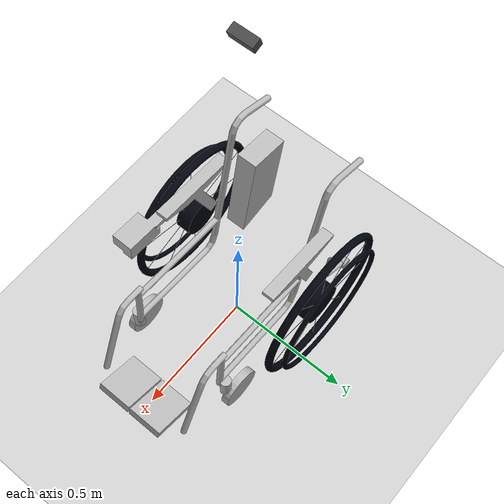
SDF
<?xml version="1.0"?>
<sdf version="1.6">
  <world name="default">

    <include>
      <uri>model://ground_plane</uri>
    </include>

    <include>
      <uri>model://sun</uri>
    </include>

    <scene>
      <shadows>false</shadows>
    </scene>

    <gui fullscreen='0'>
      <camera name='user_camera'>
        <pose frame=''>0.319654 -0.235002 9.29441 0 1.5138 0.009599</pose>
        <view_controller>orbit</view_controller>
        <projection_type>perspective</projection_type>
      </camera>
    </gui>

    <physics type="ode">
      <real_time_update_rate>1000.0</real_time_update_rate>
      <max_step_size>0.001</max_step_size>
      <real_time_factor>1</real_time_factor>
      <ode>
        <solver>
          <type>quick</type>
          <iters>150</iters>
          <precon_iters>0</precon_iters>
          <sor>1.400000</sor>
          <use_dynamic_moi_rescaling>1</use_dynamic_moi_rescaling>
        </solver>
        <constraints>
          <cfm>0.00001</cfm>
          <erp>0.2</erp>
          <contact_max_correcting_vel>2000.000000</contact_max_correcting_vel>
          <contact_surface_layer>0.01000</contact_surface_layer>
        </constraints>
      </ode>
    </physics>

    <include>
      <uri>model://momo</uri>
    </include>

  </world>
</sdf>

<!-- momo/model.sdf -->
<sdf version='1.5'>
  <model name="momo">
    <pose>0.0 0.0 0.404 0.0 0.0 0.0</pose>

    <link name="base_footprint"/>

    <link name="base_link">

      <inertial>
        <pose>0 0 0.1 0 0 0</pose>
        <inertia>
          <ixx>2.665</ixx>
          <iyy>4.562562499999999</iyy>
          <izz>3.3555625</izz>
        </inertia>
        <mass>30.0</mass>
      </inertial>

      <collision name="base_collision">
        <pose>0 0 0.1 0 0 0</pose>
        <geometry>
          <box>
            <size>1.029 0.542 0.815</size>
          </box>
        </geometry>
      </collision>

      <visual name="base_visual">
        <pose>0 0 -0.4075 0 0 0</pose>
        <geometry>
          <mesh>
            <uri>model://momo/meshes/momo_base.dae</uri>
            <scale>0.001 0.001 0.001</scale>
          </mesh>
        </geometry>
      </visual>
    </link>

    <link name="wheel_left_link">
      <!-- TODO: あとでinertialを算出してセットすること。 -->
      <inertial>
        <pose>-0.1 0.3076 -0.1 -1.57 0 0</pose>
        <inertia>
          <ixx>1.8158194e-03</ixx>
          <ixy>-9.3392e-12</ixy>
          <ixz>1.04909e-11</ixz>
          <iyy>3.2922126e-03</iyy>
          <iyz>5.75694e-11</iyz>
          <izz>1.8158194e-03</izz>
        </inertia>
        <mass>1.0</mass>
      </inertial>

      <collision name="wheel_left_collision">
        <pose>-0.1 0.3076 -0.1 -1.57 0 0</pose>
        <geometry>
          <cylinder>
            <radius>0.305</radius>
            <length>0.030</length>
          </cylinder>
        </geometry>
        <surface>
          <!-- This friction pamareter don't contain reliable data!! -->
          <friction>
            <ode>
              <mu>100000.0</mu>
              <mu2>100000.0</mu2>
              <fdir1>0 0 0</fdir1>
              <slip1>0.0</slip1>
              <slip2>0.0</slip2>
            </ode>
          </friction>
        </surface>
      </collision>
      <visual name="wheel_left_visual">
        <pose>-0.1 0.3076 -0.1 0 0 3.14</pose>
        <geometry>
          <mesh>
            <uri>model://momo/meshes/tire.dae</uri>
            <scale>0.001 0.001 0.001</scale>
          </mesh>
        </geometry>
      </visual>
    </link>

    <link name="wheel_right_link">
      <!-- TODO: あとでinertialを算出してセットすること。 -->
      <inertial>
        <pose>-0.1 -0.3076 -0.1 -1.57 0 0</pose>
        <inertia>
          <ixx>1.8158194e-03</ixx>
          <ixy>-9.3392e-12</ixy>
          <ixz>1.04909e-11</ixz>
          <iyy>3.2922126e-03</iyy>
          <iyz>5.75694e-11</iyz>
          <izz>1.8158194e-03</izz>
        </inertia>
        <mass>1.0</mass>
      </inertial>

      <collision name="wheel_right_collision">
        <pose>-0.1 -0.3076 -0.1 -1.57 0 0</pose>
        <geometry>
          <cylinder>
            <radius>0.305</radius>
            <length>0.030</length>
          </cylinder>
        </geometry>

        <surface>

          <friction>
            <ode>
              <mu>100000.0</mu>
              <mu2>100000.0</mu2>
              <fdir1>0 0 0</fdir1>
              <slip1>0.0</slip1>
              <slip2>0.0</slip2>
            </ode>
          </friction>
        </surface>

      </collision>

      <visual name="wheel_right_visual">
        <pose>-0.1 -0.3076 -0.1 0 0 0</pose>
        <geometry>
          <mesh>
            <uri>model://momo/meshes/tire.dae</uri>
            <scale>0.001 0.001 0.001</scale>
          </mesh>
        </geometry>
      </visual>
    </link>

    <link name="caster_left_link">
      <!-- TODO: あとでinertialを算出してセットすること。 -->
      <inertial>
        <pose>0.32 0.21 -0.23 0 0 0</pose>
        <inertia>
          <ixx>1.8158194e-03</ixx>
          <ixy>-9.3392e-12</ixy>
          <ixz>1.04909e-11</ixz>
          <iyy>3.2922126e-03</iyy>
          <iyz>5.75694e-11</iyz>
          <izz>1.8158194e-03</izz>
        </inertia>
        <mass>2.8498940e-02</mass>
      </inertial>

      <collision name="caster_left_collision">
        <pose>0.32 0.21 -0.23 0 0 0</pose>
        <geometry>
          <cylinder>
            <radius>0.021</radius>
            <length>0.100</length>
          </cylinder>
        </geometry>

        <surface>

          <friction>
            <ode>
              <mu>100000.0</mu>
              <mu2>100000.0</mu2>
              <fdir1>0 0 0</fdir1>
              <slip1>0.0</slip1>
              <slip2>0.0</slip2>
            </ode>
          </friction>
        </surface>

      </collision>

      <visual name="caster_left_visual">
        <pose>0.32 0.21 -0.23 0 0 0</pose>
        <geometry>
          <cylinder>
            <radius>0.021</radius>
            <length>0.100</length>
          </cylinder>
        </geometry>
      </visual>
    </link>

    <link name="caster_wheel_left_link">
      <!-- TODO: あとでinertialを算出してセットすること。 -->
      <inertial>
        <pose>0.27 0.23 -0.32 -1.57 0 0</pose>
        <inertia>
          <ixx>1.8158194e-03</ixx>
          <ixy>-9.3392e-12</ixy>
          <ixz>1.04909e-11</ixz>
          <iyy>3.2922126e-03</iyy>
          <iyz>5.75694e-11</iyz>
          <izz>1.8158194e-03</izz>
        </inertia>
        <mass>2.8498940e-02</mass>
      </inertial>

      <collision name="caster_wheel_left_collision">
        <pose>0.27 0.23 -0.32 -1.57 0 0</pose>
        <geometry>
          <cylinder>
            <radius>0.080</radius>
            <length>0.030</length>
          </cylinder>
        </geometry>

        <surface>

          <friction>
            <ode>
              <mu>100000.0</mu>
              <mu2>100000.0</mu2>
              <fdir1>0 0 0</fdir1>
              <slip1>0.0</slip1>
              <slip2>0.0</slip2>
            </ode>
          </friction>
        </surface>

      </collision>

      <visual name="caster_wheel_left_visual">
        <pose>0.27 0.23 -0.32 -1.57 0 0</pose>
        <geometry>
          <cylinder>
            <radius>0.080</radius>
            <length>0.030</length>
          </cylinder>
        </geometry>
      </visual>
    </link>

    <link name="caster_right_link">
      <!-- TODO: あとでinertialを算出してセットすること。 -->
      <inertial>
        <pose>0.32 -0.21 -0.23 0 0 0</pose>
        <inertia>
          <ixx>1.8158194e-03</ixx>
          <ixy>-9.3392e-12</ixy>
          <ixz>1.04909e-11</ixz>
          <iyy>3.2922126e-03</iyy>
          <iyz>5.75694e-11</iyz>
          <izz>1.8158194e-03</izz>
        </inertia>
        <mass>2.8498940e-02</mass>
      </inertial>

      <collision name="caster_right_collision">
        <pose>0.32 -0.21 -0.23 0 0 0</pose>
        <geometry>
          <cylinder>
            <radius>0.021</radius>
            <length>0.100</length>
          </cylinder>
        </geometry>

        <surface>

          <friction>
            <ode>
              <mu>100000.0</mu>
              <mu2>100000.0</mu2>
              <fdir1>0 0 0</fdir1>
              <slip1>0.0</slip1>
              <slip2>0.0</slip2>
            </ode>
          </friction>
        </surface>

      </collision>

      <visual name="caster_right_visual">
        <pose>0.32 -0.21 -0.23 0 0 0</pose>
        <geometry>
          <cylinder>
            <radius>0.021</radius>
            <length>0.100</length>
          </cylinder>
        </geometry>
      </visual>
    </link>

    <link name="caster_wheel_right_link">
      <!-- TODO: あとでinertialを算出してセットすること。 -->
      <inertial>
        <pose>0.27 -0.23 -0.32 -1.57 0 0</pose>
        <inertia>
          <ixx>1.8158194e-03</ixx>
          <ixy>-9.3392e-12</ixy>
          <ixz>1.04909e-11</ixz>
          <iyy>3.2922126e-03</iyy>
          <iyz>5.75694e-11</iyz>
          <izz>1.8158194e-03</izz>
        </inertia>
        <mass>2.8498940e-02</mass>
      </inertial>

      <collision name="caster_wheel_right_collision">
        <pose>0.27 -0.23 -0.32 -1.57 0 0</pose>
        <geometry>
          <cylinder>
            <radius>0.080</radius>
            <length>0.030</length>
          </cylinder>
        </geometry>

        <surface>

          <friction>
            <ode>
              <mu>100000.0</mu>
              <mu2>100000.0</mu2>
              <fdir1>0 0 0</fdir1>
              <slip1>0.0</slip1>
              <slip2>0.0</slip2>
            </ode>
          </friction>
        </surface>

      </collision>

      <visual name="caster_wheel_right_visual">
        <pose>0.27 -0.23 -0.32 -1.57 0 0</pose>
        <geometry>
          <cylinder>
            <radius>0.080</radius>
            <length>0.030</length>
          </cylinder>
        </geometry>
      </visual>
    </link>

    <joint name="base_joint" type="fixed">
      <parent>base_footprint</parent>
      <child>base_link</child>
      <pose>0.0 0.0 0.010 0 0 0</pose>
    </joint>

    <joint name="wheel_left_joint" type="revolute">
      <parent>base_link</parent>
      <child>wheel_left_link</child>
      <pose>-0.1 0.3076 -0.1 -1.57 0 0</pose>

      <axis>
        <xyz>0 0 1</xyz>
      </axis>
    </joint>

    <joint name="wheel_right_joint" type="revolute">
      <parent>base_link</parent>
      <child>wheel_right_link</child>
      <pose>-0.1 -0.3076 -0.1 -1.57 0 0</pose>
      <axis>
        <xyz>0 0 1</xyz>
      </axis>
    </joint>

    <joint name="caster_left_joint" type="revolute">
      <parent>base_link</parent>
      <child>caster_left_link</child>
      <pose>0.32 0.23 -0.23 0 0 0</pose>
      <axis>
        <xyz>0 0 1</xyz>
      </axis>
    </joint>

    <joint name="caster_wheel_left_joint" type="revolute">
      <parent>caster_left_link</parent>
      <child>caster_wheel_left_link</child>
      <pose>0.27 0.23 -0.32 -1.57 0 0</pose>
      <axis>
        <xyz>0 0 1</xyz>
      </axis>
    </joint>

    <joint name="caster_right_joint" type="revolute">
      <parent>base_link</parent>
      <child>caster_right_link</child>
      <pose>0.32 -0.23 -0.23 0 0 0</pose>
      <axis>
        <xyz>0 0 1</xyz>
      </axis>
    </joint>

    <joint name="caster_wheel_right_joint" type="revolute">
      <parent>caster_right_link</parent>
      <child>caster_wheel_right_link</child>
      <pose>0.27 -0.23 -0.32 -1.57 0 0</pose>
      <axis>
        <xyz>0 0 1</xyz>
      </axis>
    </joint>

    <!-- プラグインをロードします。 filenameは共有ライブラリのファイル名です。 -->
    <plugin name="differential_drive_controller" filename="libgazebo_ros_diff_drive.so">
      <ros>
        <namespace>/momo</namespace>
      </ros>

      <!-- 左右の車輪のジョイントを指定します。 このジョイントにアクチュエータが追加され、制御可能になります。 -->
      <left_joint>wheel_left_joint</left_joint>
      <right_joint>wheel_right_joint</right_joint>
      <!-- ロボットのオドメトリの中心となるフレームです。 rviz等でロボットの位置を可視化するときにこのフレームを利用します。 -->
      <robot_base_frame>base_link</robot_base_frame>
      <!-- 車輪の間の距離です。 -->
      <wheel_separation>0.540</wheel_separation>
      <!-- 車輪の直径です。ホイールの直径（メートル単位）は、デフォルトで0.15mです。 -->
      <wheel_diameter>0.615</wheel_diameter>
      <!-- ホイールの加速度（rad / s ^ 2）は、デフォルトで0.0 rad / s ^ 2になります。-->
      <max_wheel_acceleration>1.0</max_wheel_acceleration>
      <!-- ホイールが生成できる最大トルク（Nm）は、デフォルトで5Nmです。 -->
      <max_wheel_torque>20</max_wheel_torque>
      <!-- オドメトリフレーム、デフォルトは `odom` -->
      <odometry_frame>odom</odometry_frame>
      <!-- オドメトリを計算するロボットフレーム。デフォルトは `base_footprint`です。 -->
      <robotBaseFrame>base_footprint</robotBaseFrame>
      <!-- オドメトリソース、エンコーダの場合は0、WORLDの場合は1、デフォルトはWORLD -->
      <odometrySource>1</odometrySource>
      <!-- ホイールリンクの変換を公開するにはtrueに設定する。デフォルト設定はfalse。-->
      <publish_wheel_tf>true</publish_wheel_tf>
      <!-- オドメトリを公開するにはtrueに設定する。 -->
      <publish_odom>true</publish_odom>
      <!-- オドメトリの変換を公開するにはtrueに設定する。 -->
      <publish_odom_tf>true</publish_odom_tf>

    </plugin>

    <!-- Depth camera -->
    <link name="camera_link">
      <pose>0 0 1.2 0 0.349066 0</pose>
      <inertial>
        <mass>0.01</mass>
        <pose>0 0 0 0 -0 0</pose>
        <inertia>
          <ixx>1.8e-7</ixx>
          <ixy>0</ixy>
          <ixz>0</ixz>
          <iyy>2.1733e-6</iyy>
          <iyz>0</iyz>
          <izz>1.8e-7</izz>
        </inertia>
      </inertial>
      <collision name="collision">
        <geometry>
          <box>
            <size>0.03 0.08 0.03</size>
          </box>
        </geometry>
      </collision>
      <visual name="camera_visual">
        <geometry>
          <box>
            <size>0.03 0.08 0.03</size>
          </box>
        </geometry>
        <material>
          <script>
            <name>Gazebo/DarkGrey</name>
            <uri>file://media/materials/scripts/gazebo.material</uri>
          </script>
        </material>
      </visual>
      <sensor type="camera" name="camera">
        <update_rate>30.0</update_rate>
        <camera name="head1">
          <horizontal_fov>1.5708</horizontal_fov>
          <image>
            <width>1280</width>
            <height>800</height>
            <format>R8G8B8</format>
          </image>
          <clip>
            <near>0.02</near>
            <far>300</far>
          </clip>
          <noise>
            <type>gaussian</type>
            <!-- Noise is sampled independently per pixel on each frame. That pixel's noise value is added to each of its color channels, which at that point lie in the range [0,1]. -->
            <mean>0.0</mean>
            <stddev>0.007</stddev>
          </noise>
        </camera>
        <plugin name="camera_controller" filename="libgazebo_ros_camera.so">
          <alwaysOn>true</alwaysOn>
          <updateRate>0.0</updateRate>
          <cameraName>momo/camera</cameraName>
          <imageTopicName>image_raw</imageTopicName>
          <cameraInfoTopicName>camera_info</cameraInfoTopicName>
          <frameName>camera_link</frameName>
          <hackBaseline>0.07</hackBaseline>
          <distortionK1>0.0</distortionK1>
          <distortionK2>0.0</distortionK2>
          <distortionK3>0.0</distortionK3>
          <distortionT1>0.0</distortionT1>
          <distortionT2>0.0</distortionT2>
        </plugin>
      </sensor>

      <sensor type="depth" name="depth">
        <update_rate>30.0</update_rate>
        <camera name="head2">
          <horizontal_fov>1.51844</horizontal_fov>
          <image>
            <width>1280</width>
            <height>720</height>
            <format>R8G8B8</format>
          </image>
          <clip>
            <near>0.5</near>
            <far>6.0</far>
          </clip>
          <noise>
            <type>gaussian</type>
            <!-- Noise is sampled independently per pixel on each frame. That pixel's noise value is added to each of its color channels, which at that point lie in the range [0,1]. -->
            <mean>0.0</mean>
            <stddev>0.07</stddev>
          </noise>
        </camera>
        <plugin name="depth_controller" filename="libgazebo_ros_camera.so">
          <visualize>true</visualize>
          <alwaysOn>true</alwaysOn>
          <updateRate>0.0</updateRate>
          <cameraName>depth/camera</cameraName>
          <imageTopicName>image_raw</imageTopicName>
          <cameraInfoTopicName>camera_info</cameraInfoTopicName>
          <frameName>camera_link</frameName>
          <hackBaseline>0.07</hackBaseline>
          <distortionK1>0.0</distortionK1>
          <distortionK2>0.0</distortionK2>
          <distortionK3>0.0</distortionK3>
          <distortionT1>0.0</distortionT1>
          <distortionT2>0.0</distortionT2>
        </plugin>
      </sensor>

      <sensor name="imu" type="imu">
        <imu>
          <angular_velocity>
            <x>
              <noise type="gaussian">
                <mean>0.0</mean>
                <stddev>2e-4</stddev>
                <bias_mean>0.0000075</bias_mean>
                <bias_stddev>0.0000008</bias_stddev>
              </noise>
            </x>
            <y>
              <noise type="gaussian">
                <mean>0.0</mean>
                <stddev>2e-4</stddev>
                <bias_mean>0.0000075</bias_mean>
                <bias_stddev>0.0000008</bias_stddev>
              </noise>
            </y>
            <z>
              <noise type="gaussian">
                <mean>0.0</mean>
                <stddev>2e-4</stddev>
                <bias_mean>0.0000075</bias_mean>
                <bias_stddev>0.0000008</bias_stddev>
              </noise>
            </z>
          </angular_velocity>
          <linear_acceleration>
            <x>
              <noise type="gaussian">
                <mean>0.0</mean>
                <stddev>1.7e-2</stddev>
                <bias_mean>0.1</bias_mean>
                <bias_stddev>0.001</bias_stddev>
              </noise>
            </x>
            <y>
              <noise type="gaussian">
                <mean>0.0</mean>
                <stddev>1.7e-2</stddev>
                <bias_mean>0.1</bias_mean>
                <bias_stddev>0.001</bias_stddev>
              </noise>
            </y>
            <z>
              <noise type="gaussian">
                <mean>0.0</mean>
                <stddev>1.7e-2</stddev>
                <bias_mean>0.1</bias_mean>
                <bias_stddev>0.001</bias_stddev>
              </noise>
            </z>
          </linear_acceleration>
        </imu>
        <always_on>1</always_on>
        <update_rate>1000</update_rate>
        <plugin filename="libgazebo_ros_imu_sensor.so" name="imu_plugin">
          <topicName>imu</topicName>
          <bodyName>camera_link</bodyName>
          <updateRateHZ>10.0</updateRateHZ>
          <gaussianNoise>0.0</gaussianNoise>
          <xyzOffset>0 0 0</xyzOffset>
          <rpyOffset>0 0 0</rpyOffset>
          <frameName>camera_link</frameName>
          <initialOrientationAsReference>false</initialOrientationAsReference>
        </plugin>
      </sensor>

    </link>

    <joint name="camera_joint" type="fixed">
      <parent>base_link</parent>
      <child>camera_link</child>
      <pose>0 0 1.2 0 0.349066 0</pose>
    </joint>

    <link name="gps_link">
      <pose>0 0 10 0 0 0</pose>
      <sensor name="my_gps" type="gps">
        <always_on>true</always_on>
        <update_rate>30</update_rate>
        <gps>
          <position_sensing>
            <horizontal>
              <noise type="gaussian">
                <mean>0.0</mean>
                <stddev>2e-4</stddev>
              </noise>
            </horizontal>
            <vertical>
              <noise type="gaussian">
                <mean>0.0</mean>
                <stddev>2e-4</stddev>
              </noise>
            </vertical>
          </position_sensing>
        </gps>
        <plugin name="gps_plugin" filename="libgazebo_ros_gps_sensor.so">
          <ros>
            <argument>--ros-args --remap ~/out:=gps_data</argument>
          </ros>
        </plugin>
      </sensor>
    </link>

    <joint name="gps_joint" type="fixed">
      <parent>base_link</parent>
      <child>gps_link</child>
    </joint>

  </model>
</sdf>
